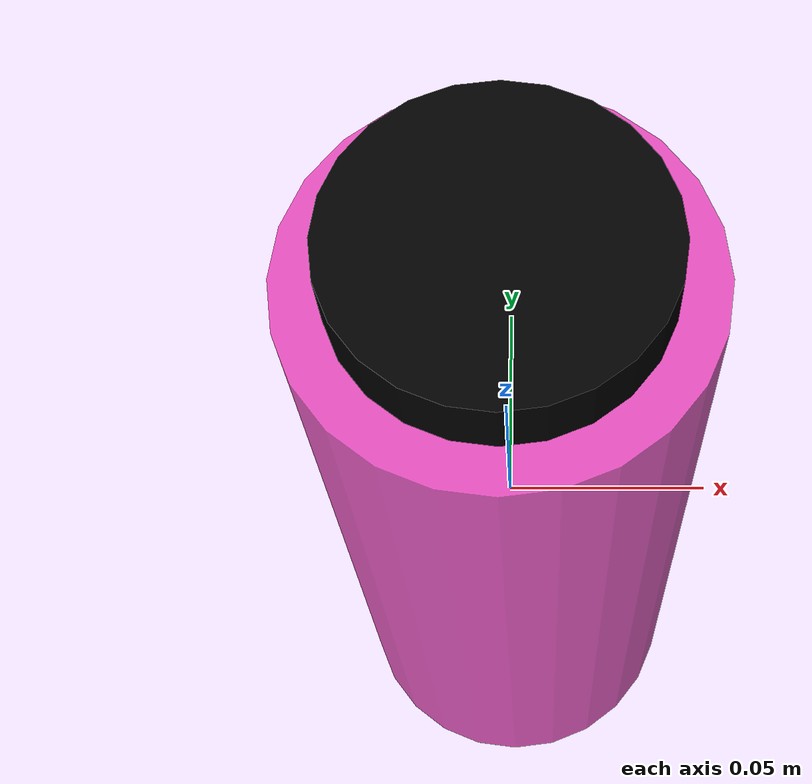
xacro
<?xml version='1.0'?>

<robot name="water_bottle" xmlns:xacro="http://www.ros.org/wiki/xacro">
	<xacro:property name="robot_name" value="water_bottle" />
	<xacro:arg name="arg mass" default="1.0"/>

    <!-- Arguments to be passed in -->
    <xacro:arg name="mass" default="1.0"/>
    <xacro:arg name="red" default="0.9"/>
    <xacro:arg name="green" default="0.2"/>
    <xacro:arg name="blue" default="0.7"/>
    <xacro:arg name="alpha" default="0.8"/>

    <!-- Make Base Link -->
    <link name="base_link">
        <origin rpy="0 0 0" xyz="0 0 0"/>
    </link>

	<!-- Make main bottle link -->
    <link name="main_bottle">
        <inertial>
            <origin xyz="0.0 0.0 0.0" rpy="0.0 0.0 0.0"/>
            <mass value="$(arg mass)"/>
            <inertia ixx="${$(arg mass) * 0.00435833333333}" ixy="0.0" ixz="0.0" iyy="${$(arg mass) * 0.00435833333333}" iyz="0.0" izz="${$(arg mass) * 0.0010125}"/>
        </inertial>
        <visual name="main_bottle_visual">
            <origin xyz="0.0 0.0 0.0" rpy="0.0 0.0 0.0"/>
            <geometry>
                <cylinder radius="0.045" length="0.215"/>
            </geometry>
            <material name="bottle">
                <color rgba="$(arg red) $(arg green) $(arg blue) $(arg alpha)"/>
            </material>
        </visual>
        <collision>
            <origin xyz="0.0 0.0 0.0" rpy="0.0 0.0 0.0"/>
            <geometry>
                <cylinder radius="0.045" length="0.215"/>
            </geometry>
        </collision>
    </link>

    <joint name="base_bottle_joint" type="fixed">
        <origin xyz="0.0 0.0 0.0" rpy="0.0 0.0 0.0"/>
        <parent link="base_link"/>
        <child link="main_bottle"/>
    </joint>

    <link name="bottle_cap">
        <inertial>
            <origin xyz="0.0 0.0 0.0" rpy="0.0 0.0 0.0"/>
            <mass value="0.0"/>
            <inertia ixx="0.0" ixy="0.0" ixz="0.0" iyy="0.0" iyz="0.0" izz="0.0"/>
        </inertial>
        <visual name="bottle_cap_visual">
            <origin xyz="0.0 0.0 0.0" rpy="0.0 0.0 0.0"/>
            <geometry>
                <cylinder radius="0.035" length="0.015"/>
            </geometry>
            <material name="cap">
                <color rgba="0.0 0.0 0.0 1.0"/>
            </material>
        </visual>
        <collision>
            <origin xyz="0.0 0.0 0.0" rpy="0.0 0.0 0.0"/>
            <geometry>
                <cylinder radius="0.035" length="0.015"/>
            </geometry>
        </collision>
    </link>

    <joint name="bottle_cap_joint" type="fixed">
        <origin xyz="0.0 0.0 0.115" rpy="0.0 0.0 0.0"/>
        <parent link="main_bottle"/>
        <child link="bottle_cap"/>
    </joint>

    <!-- Temporary Joint to keep in place -->
    <link name="world"></link>

	<joint name="world_joint" type="fixed">
		<origin xyz="0 0 0" rpy="0 0 0" />
		<parent link="world"/>
		<child link="base_link" />
	</joint>

</robot>
